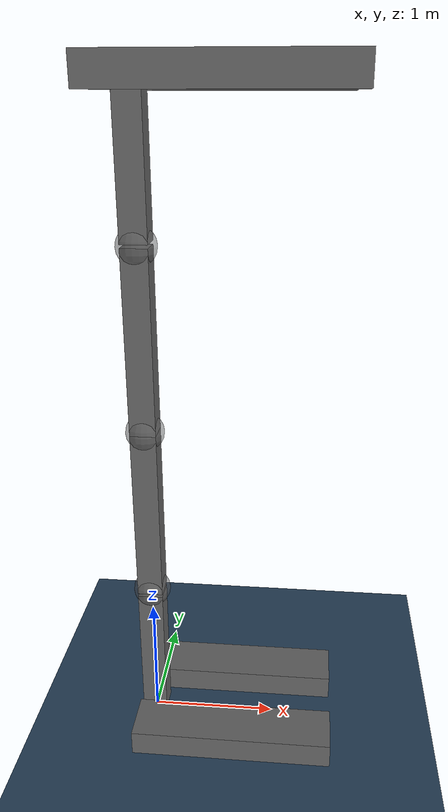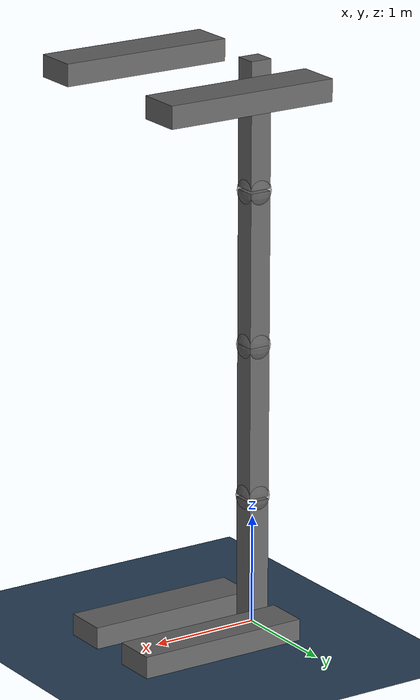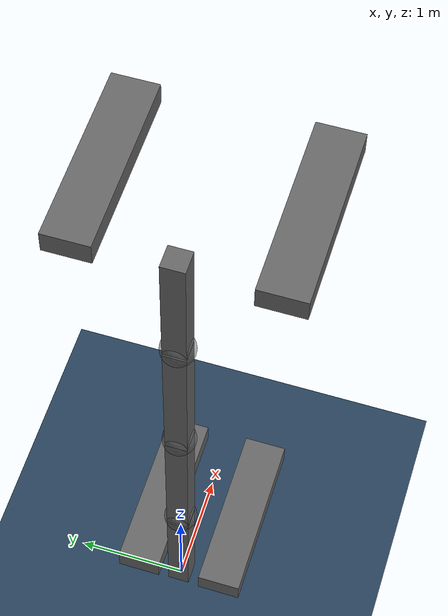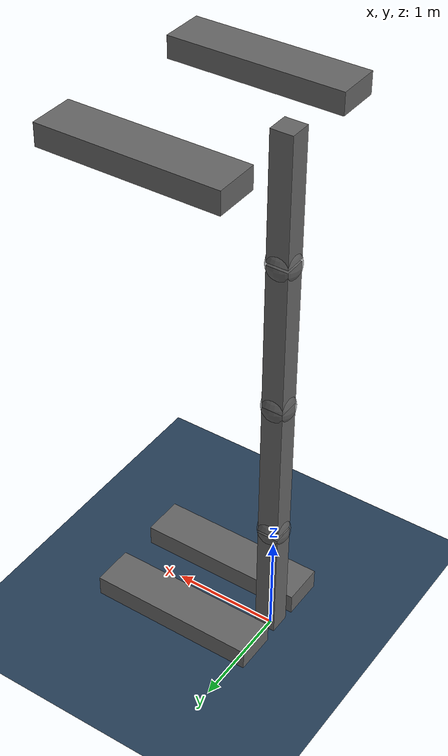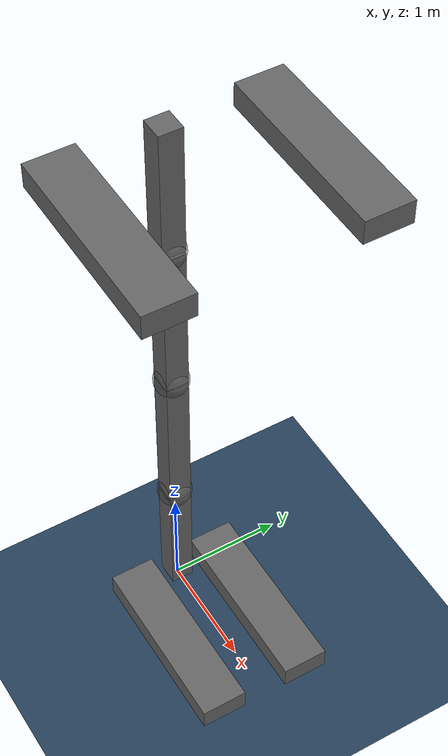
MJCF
<mujoco model="4-link-robot">
    <compiler angle="radian" meshdir="assets" texturedir="assets" autolimits="true"/>
    <option cone="elliptic" impratio="100"/>
    <default>
        <default class = "4linkrobot">
            <geom friction="0.6" margin="0.001" material = "link"/>
        </default>
    </default>

    <asset>
        <texture type="2d" name="groundplane" builtin="checker" mark="edge" width="512" height="512" rgb1="0.2 0.3 0.4" rgb2="0.1 0.2 0.3" markrgb="0.8 0.8 0.8"/>
        <material name="groundplane" texture="groundplane" texrepeat="1000 1000" reflectance="0.2"/>
        <material name="link" rgba="0.4 0.4 0.4 1"/>
    </asset>

    <visual>
        <headlight diffuse="1 1 1" ambient="0.3 0.3 0.3" specular="0 0 0"/>
        <rgba haze="0.15 0.25 0.35 1"/>
        <global azimuth="120" elevation="-20"/>
    </visual>

    <worldbody>
        <light name="spotlight" mode="targetbodycom" target="robot" pos="0 -1 2"/>

        <geom name="floor" type="plane" material="groundplane" size="1000 1000 0.1"/>

        <body name="robot" pos="0 0 0" childclass = "4linkrobot">
            <freejoint/>
            <body name = "foot1">

                <geom name = "m5_1" type="box" size="0.8 0.2 0.1" pos = "0.7 0.4 0.1" mass = "0.5"/>
                <geom name = "m5_2" type="box" size="0.8 0.2 0.1" pos = "0.7 -0.4 0.1" mass = "0.5"/>
                <geom name = "m1" type="box" size="0.1 0.1 0.575" pos = "0 0 0.6" mass = "1"/>

                <body name="leg1" pos="0 0 1.2">
                    <joint name="joint1" type="hinge" axis="0 1 0" range="-3 3"/>
                    <geom name = "m7" type="sphere" size = "0.15 0.15 0.15" pos = "0 0 0" mass = "1" contype = "0" conaffinity = "0" rgba = "0.4 0.4 0.4 0.5" />
                    <geom name="m2" type="box" size="0.1 0.1 0.7" pos = "0 0 0.7" mass = "1"/>
                    <geom name = "m8" type="sphere" size = "0.15 0.15 0.15" pos = "0 0 1.4" mass = "1" contype = "0" conaffinity = "0" rgba = "0.4 0.4 0.4 0.5" />

                    <body name="leg2" pos="0 0 1.4">
                        <joint name="joint2" type="hinge" axis="0 1 0" range="-3 3"/>
                        <geom name="m3" type="box" size="0.1 0.1 0.7" pos = "0 0 0.7" mass = "1"/>
                        <geom name = "m9" type="sphere" size = "0.15 0.15 0.15" pos = "0 0 1.4" mass = "1" contype = "0" conaffinity = "0" rgba = "0.4 0.4 0.4 0.5" />
                        <body name="foot2" pos="0 0 1.4">
                            <joint name="joint3" type="hinge" axis="0 1 0" range="-3 3"/>
                            <geom name = "m4" type="box" size="0.1 0.1 0.575" pos = "0 0 0.6" mass = "1"/>
                            <geom name = "m6_1" type="box" size="0.8 0.2 0.1" pos = "0.7 0.81 1.1" mass = "0.5"/>
                            <geom name = "m6_2" type="box" size="0.8 0.2 0.1" pos = "0.7 -0.81 1.1" mass = "0.5"/>

                        </body>
                    </body>
                </body>
            </body>
        </body>
    </worldbody>

  <actuator>
    <position name="joint1_act" joint="joint1" ctrlrange="-3.14 3.14" kp="500" kv = "50"/>
    <position name="joint2_act" joint="joint2" ctrlrange="-3.14 3.14" kp="500" kv = "50"/>
    <position name="joint3_act" joint="joint3" ctrlrange="-3.14 3.14" kp="500" kv = "50"/>
  </actuator>

  <keyframe>
    <key name="home" qpos="0 0 1.39186 0.828929 0 0.559354 0 0.287885 0.173135 0.356612"
    qvel="-3.41396e-06 0 3.3898e-06 0 6.03853e-06 0 -3.99941e-06 -4.35491e-06 -4.10311e-06"
    ctrl="0.2512 0.157 0.314"/>
  </keyframe>
</mujoco>
